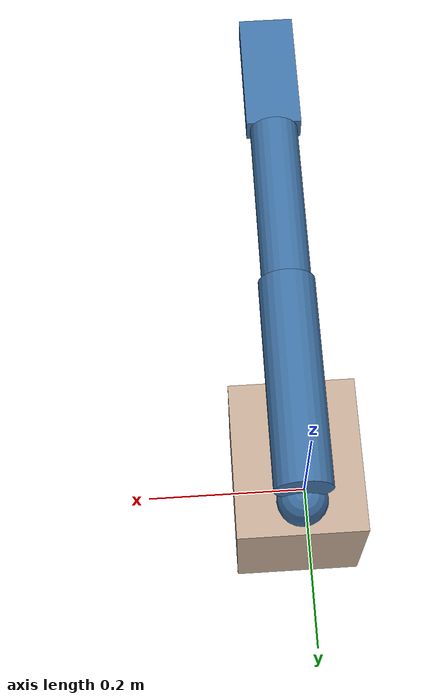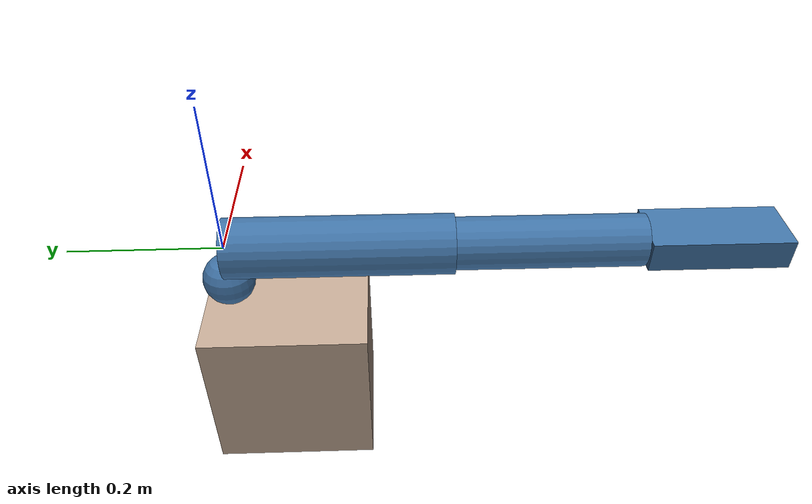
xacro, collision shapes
<?xml version="1.0"?>
<robot xmlns:xacro="http://www.ros.org/wiki/xacro" name="upper_arm_osim_shoulder_mesh">
    <xacro:arg name="initial_positions_file" default="initial_positions.yaml" />

    <!-- Import upper_arm_osim_shoulder_mesh urdf file -->
    <xacro:include filename="$(find image_pose_tracking)/config/right_arm_osim_shoulder_mesh.urdf.xacro" />

    <!-- Import control_xacro -->
    <xacro:include filename="upper_arm_osim_shoulder_mesh.ros2_control.xacro" />

    <xacro:upper_arm_osim_shoulder_mesh_ros2_control name="FakeSystem" initial_positions_file="$(arg initial_positions_file)"/>

</robot>

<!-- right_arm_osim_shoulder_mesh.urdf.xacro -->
<robot xmlns:xacro="http://www.ros.org/wiki/xacro" name="upper_arm_osim_shoulder_mesh">

    <xacro:arg name="robot_prefix" default=""/>
    <xacro:arg name="robot_color" default="blue"/>
    <xacro:arg name="upper_arm_length" default="0.299"/>
    <xacro:arg name="forearm_length" default="0.248"/>
    <xacro:arg name="hand_length" default="0.0918"/>

    <xacro:property name="prefix" value="$(arg robot_prefix)"/>
    <xacro:property name="color" value="$(arg robot_color)"/>
    <xacro:property name="upper_arm_length" value="$(arg upper_arm_length)"/>
    <xacro:property name="upper_arm_com_y" value="${-float(upper_arm_length) / 2.0}"/>
    <xacro:property name="forearm_length" value="$(arg forearm_length)"/>
    <xacro:property name="forearm_com_y" value="${-float(forearm_length) / 2.0}"/>
    <xacro:property name="hand_length" value="$(arg hand_length)"/>
    <xacro:property name="mesh_dir" value="package://image_pose_tracking/meshes/human_subject_right_arm"/>

    <xacro:property name="source_upper_arm_length" value="0.3162"/>
    <xacro:property name="source_forearm_length" value="0.2482"/>
    <xacro:property name="source_hand_length" value="0.0918"/>
    <xacro:property name="upper_arm_mesh_scale_z" value="${1.03030303 * float(upper_arm_length) / source_upper_arm_length}"/>
    <xacro:property name="forearm_mesh_scale_z" value="${1.03030303 * float(forearm_length) / source_forearm_length}"/>
    <xacro:property name="hand_mesh_scale_y" value="${1.03030303 * float(hand_length) / source_hand_length}"/>
    <xacro:property name="color_code"  value="${
        '0.35 0.55 0.40 1' if color == 'green'
        else '0.25 0.45 0.65 1' if color == 'blue'
        else '0.72 0.70 0.65 1'}"/>

    <material name="color">
        <color rgba="${color_code}"/>
    </material>

    <material name="mesh_color">
        <color rgba="0.82 0.70 0.62 1.0"/>
    </material>

    <material name="torso_mesh_color">
        <color rgba="0.76 0.66 0.58 1.0"/>
    </material>

    <joint name="${prefix}jRightShoulder_to_UpperTorso" type="fixed">
        <origin xyz="0 -0.073 -0.2" rpy="0 0 0"/>
        <parent link="${prefix}RightShoulder"/>
        <child link="${prefix}UpperTorso"/>
    </joint>

    <link name="${prefix}UpperTorso">
        <visual>
            <origin xyz="0 0 0" rpy="-1.5708 0 0"/>
            <geometry>
                <mesh filename="${mesh_dir}/UpperTrunk.stl" scale="0.58333333 1.03030303 1.03030303"/>
            </geometry>
            <material name="torso_mesh_color"/>
        </visual>
        <collision>
            <origin xyz="0 0 0" rpy="-1.5708 0 0"/>
            <geometry>
                <box size="0.18 0.22 0.22"/>
            </geometry>
        </collision>
    </link>

    <link name="${prefix}RightShoulder">
        <visual>
            <origin xyz="0 0 -0.05" rpy="0 0 0"/>
            <geometry>
                <mesh filename="${mesh_dir}/RightShoulder.stl" scale="0.64444444 0.64444444 1.03030303"/>
            </geometry>
            <material name="color"/>
        </visual>
        <collision>
            <origin xyz="0 0 -0.05" rpy="0 0 0"/>
            <geometry>
                <sphere radius="0.035"/>
            </geometry>
        </collision>
    </link>

    <joint name="${prefix}jRightShoulder_elv_angle" type="revolute">
        <origin xyz="0 0 0" rpy="0 0 0"/>
        <parent link="${prefix}RightShoulder"/>
        <child link="${prefix}RightShoulder_elv_angle"/>
        <dynamics damping="0.1" friction="0.0"/>
        <limit effort="30" velocity="1.0" lower="-1.04" upper="1.57"/>
        <axis xyz="0.0048 0.99908918 0.04240001"/>
    </joint>

    <link name="${prefix}RightShoulder_elv_angle">
        <inertial>
            <mass value="0"/>
            <origin xyz="0 0 0" rpy="0 0 0"/>
            <inertia ixx="0" iyy="0" izz="0" ixy="0" ixz="0" iyz="0"/>
        </inertial>
    </link>

    <joint name="${prefix}jRightShoulder_shoulder_elv" type="revolute">
        <origin xyz="0 0 0" rpy="0 0 0"/>
        <parent link="${prefix}RightShoulder_elv_angle"/>
        <child link="${prefix}RightShoulder_shoulder_elv"/>
        <dynamics damping="0.1" friction="0.0"/>
        <limit effort="30" velocity="1.0" lower="0" upper="2.094"/>
        <axis xyz="-0.99826136 0.0023 0.05889802"/>
    </joint>

    <link name="${prefix}RightShoulder_shoulder_elv">
        <inertial>
            <mass value="0"/>
            <origin xyz="0 0 0" rpy="0 0 0"/>
            <inertia ixx="0" iyy="0" izz="0" ixy="0" ixz="0" iyz="0"/>
        </inertial>
    </link>

    <joint name="${prefix}jRightShoulder_shoulder1_r2" type="revolute">
        <origin xyz="0 0 0" rpy="0 0 0"/>
        <parent link="${prefix}RightShoulder_shoulder_elv"/>
        <child link="${prefix}RightShoulder_shoulder1_r2"/>
        <dynamics damping="0.1" friction="0.0"/>
        <limit effort="30" velocity="1.0" lower="-1.04" upper="1.57"/>
        <axis xyz="0.0048 0.99908918 0.04240001"/>
        <mimic joint="${prefix}jRightShoulder_elv_angle" multiplier="-1.0" offset="0.0"/>
    </joint>

    <link name="${prefix}RightShoulder_shoulder1_r2">
        <inertial>
            <mass value="0"/>
            <origin xyz="0 0 0" rpy="0 0 0"/>
            <inertia ixx="0" iyy="0" izz="0" ixy="0" ixz="0" iyz="0"/>
        </inertial>
    </link>

    <joint name="${prefix}jRightShoulder_shoulder_rot" type="revolute">
        <origin xyz="0 0 0" rpy="0 0 0"/>
        <parent link="${prefix}RightShoulder_shoulder1_r2"/>
        <child link="${prefix}RightUpperArm"/>
        <dynamics damping="0.1" friction="0.0"/>
        <limit effort="30" velocity="1.0" lower="-1.57079633" upper="2.09439510"/>
        <axis xyz="0.0048 0.99908918 0.04240001"/>
    </joint>

    <link name="${prefix}RightUpperArm">
        <inertial>
            <mass value="2.181"/>
            <origin xyz="0 ${upper_arm_com_y} 0" rpy="0 0 0"/>
            <inertia ixx="0.020332" iyy="0.0013806" izz="0.020332" ixy="0" ixz="0" iyz="0"/>
        </inertial>
        <visual>
            <origin xyz="0 ${upper_arm_com_y} 0" rpy="1.5708 0 0"/>
            <geometry>
                <mesh filename="${mesh_dir}/RightUpperArm.stl" scale="0.64444444 0.64444444 ${upper_arm_mesh_scale_z}"/>
            </geometry>
            <material name="color"/>
        </visual>
        <collision>
            <origin xyz="0 ${upper_arm_com_y} 0" rpy="1.5708 0 0"/>
            <geometry>
                <cylinder length="${upper_arm_length}" radius="0.04"/>
            </geometry>
        </collision>
    </link>

    <joint name="${prefix}jRightElbow_rotz" type="revolute">
        <origin xyz="0 ${-float(upper_arm_length)} 0" rpy="0 0 0"/>
        <parent link="${prefix}RightUpperArm"/>
        <child link="${prefix}RightForeArm"/>
        <dynamics damping="0.1" friction="0.0"/>
        <limit effort="30" velocity="1.0" lower="0" upper="2.53073"/>
        <axis xyz="0 0 1"/>
    </joint>

    <link name="${prefix}RightForeArm">
        <inertial>
            <mass value="1.454"/>
            <origin xyz="0 ${forearm_com_y} 0" rpy="0 0 0"/>
            <inertia ixx="0.008948" iyy="0.00040906" izz="0.008948" ixy="0" ixz="0" iyz="0"/>
        </inertial>
        <visual>
            <origin xyz="0 ${forearm_com_y} 0" rpy="1.5708 0 0"/>
            <geometry>
                <mesh filename="${mesh_dir}/RightForeArm.stl" scale="0.61111111 0.61111111 ${forearm_mesh_scale_z}"/>
            </geometry>
            <material name="color"/>
        </visual>
        <collision>
            <origin xyz="0 ${forearm_com_y} 0" rpy="1.5708 0 0"/>
            <geometry>
                <cylinder length="${forearm_length}" radius="0.035"/>
            </geometry>
        </collision>
    </link>

    <joint name="${prefix}jRightElbow_roty" type="revolute">
        <origin xyz="0 ${-float(forearm_length)} 0" rpy="0 0 0"/>
        <parent link="${prefix}RightForeArm"/>
        <child link="${prefix}RightForeArm_f1"/>
        <dynamics damping="0.1" friction="0.0"/>
        <limit effort="30" velocity="1.0" lower="-1.5708" upper="1.48353"/>
        <axis xyz="0 1 0"/>
    </joint>

    <link name="${prefix}RightForeArm_f1">
        <inertial>
            <mass value="0"/>
            <origin xyz="0 0 0" rpy="0 0 0"/>
            <inertia ixx="0" iyy="0" izz="0" ixy="0" ixz="0" iyz="0"/>
        </inertial>
    </link>

    <joint name="${prefix}jRightWrist_rotx" type="revolute">
        <origin xyz="0 0 0" rpy="0 0 0"/>
        <parent link="${prefix}RightForeArm_f1"/>
        <child link="${prefix}RightHand_f1"/>
        <dynamics damping="0.1" friction="0.0"/>
        <limit effort="30" velocity="1.0" lower="-1.047" upper="1.047"/>
        <axis xyz="1 0 0"/>
    </joint>

    <link name="${prefix}RightHand_f1">
        <inertial>
            <mass value="0"/>
            <origin xyz="0 0 0" rpy="0 0 0"/>
            <inertia ixx="0" iyy="0" izz="0" ixy="0" ixz="0" iyz="0"/>
        </inertial>
    </link>

    <joint name="${prefix}jRightWrist_rotz" type="revolute">
        <origin xyz="0 0 0" rpy="0 0 0"/>
        <parent link="${prefix}RightHand_f1"/>
        <child link="${prefix}RightHand"/>
        <dynamics damping="0.1" friction="0.0"/>
        <limit effort="30" velocity="1.0" lower="-0.52" upper="0.26"/>
        <axis xyz="0 0 1"/>
    </joint>

    <link name="${prefix}RightHand">
        <inertial>
            <mass value="0.4362"/>
            <origin xyz="0 ${-float(hand_length)} 0" rpy="0 0 0"/>
            <inertia ixx="0.0015471" iyy="0.00073303" izz="0.0021165" ixy="0" ixz="0" iyz="0"/>
        </inertial>
        <visual>
            <origin xyz="0 ${-float(hand_length)} 0" rpy="0 0 0"/>
            <geometry>
                <mesh filename="${mesh_dir}/RightHand.stl" scale="0.9 ${hand_mesh_scale_y} 0.55555556"/>
            </geometry>
            <material name="color"/>
        </visual>
        <collision>
            <origin xyz="0 ${-float(hand_length)} 0" rpy="0 0 0"/>
            <geometry>
                <box size="0.08 ${2.0 * float(hand_length)} 0.04"/>
            </geometry>
        </collision>
    </link>

    <joint name="${prefix}jRightHandCOM" type="fixed">
        <origin xyz="0 ${-float(hand_length)} 0" rpy="0 0 0"/>
        <parent link="${prefix}RightHand"/>
        <child link="${prefix}RightHandCOM"/>
    </joint>

    <link name="${prefix}RightHandCOM">
        <inertial>
            <mass value="0"/>
            <origin xyz="0 0 0" rpy="0 0 0"/>
            <inertia ixx="0" iyy="0" izz="0" ixy="0" ixz="0" iyz="0"/>
        </inertial>
    </link>

</robot>
